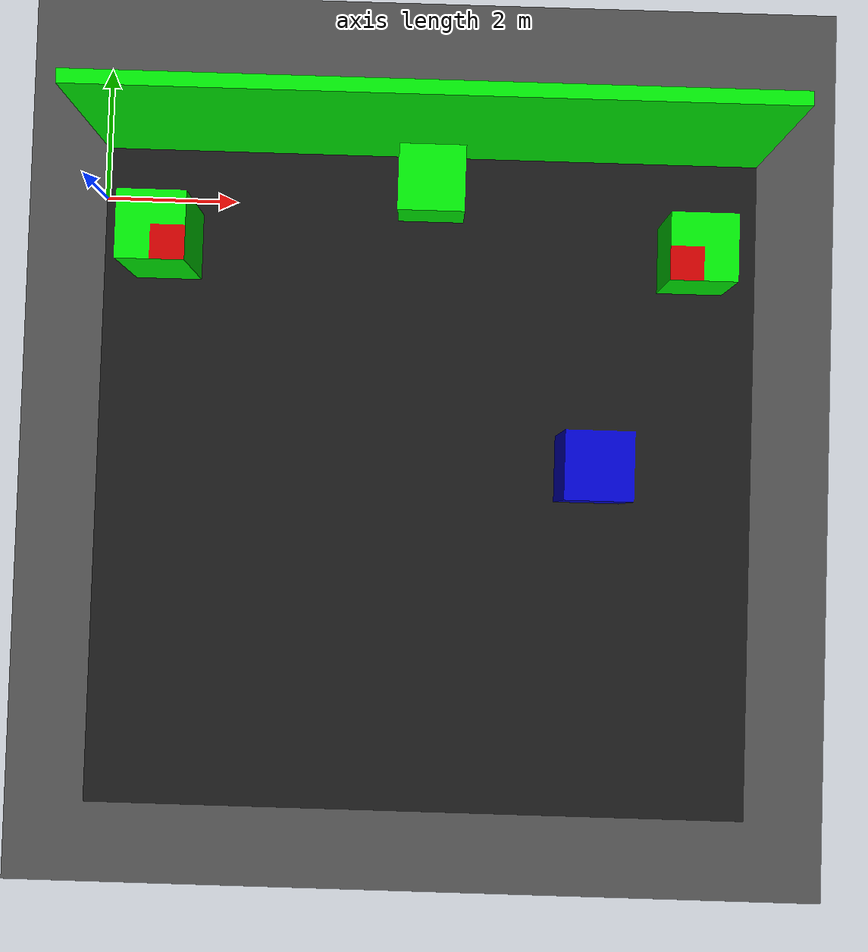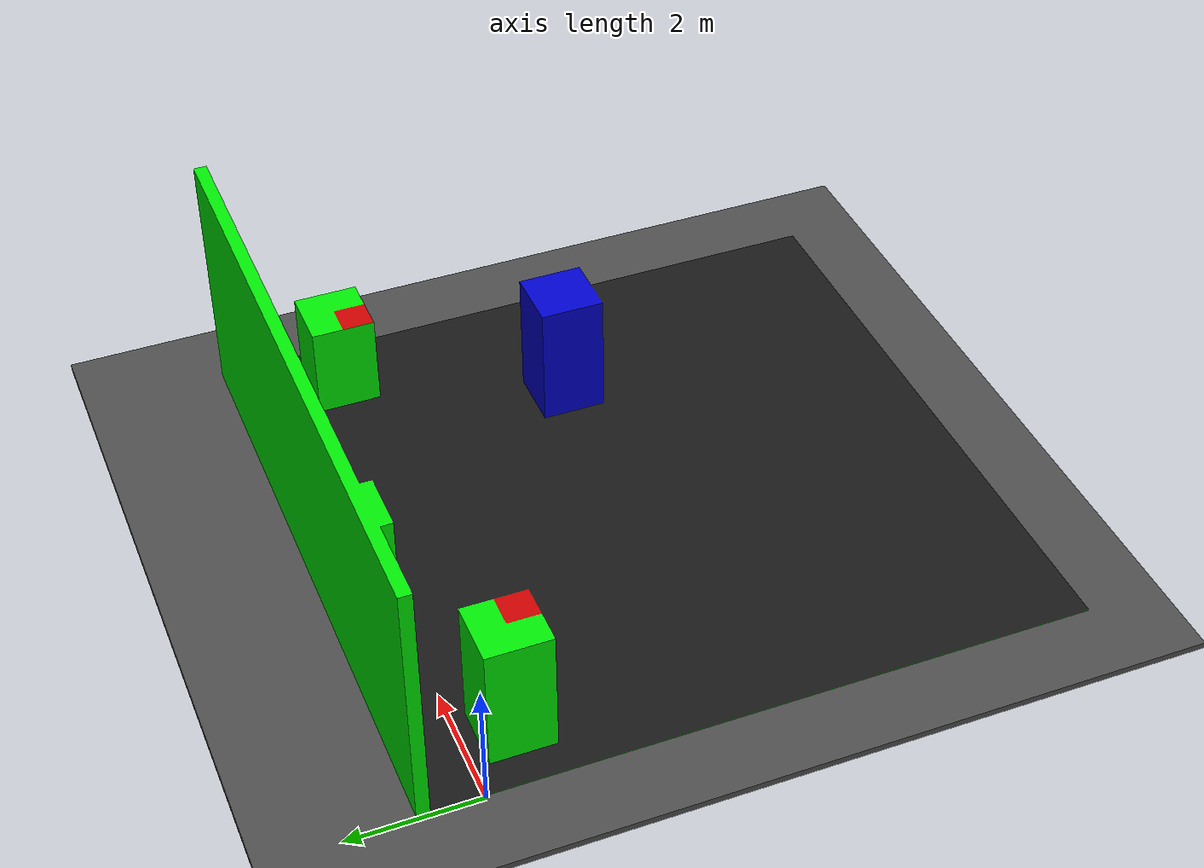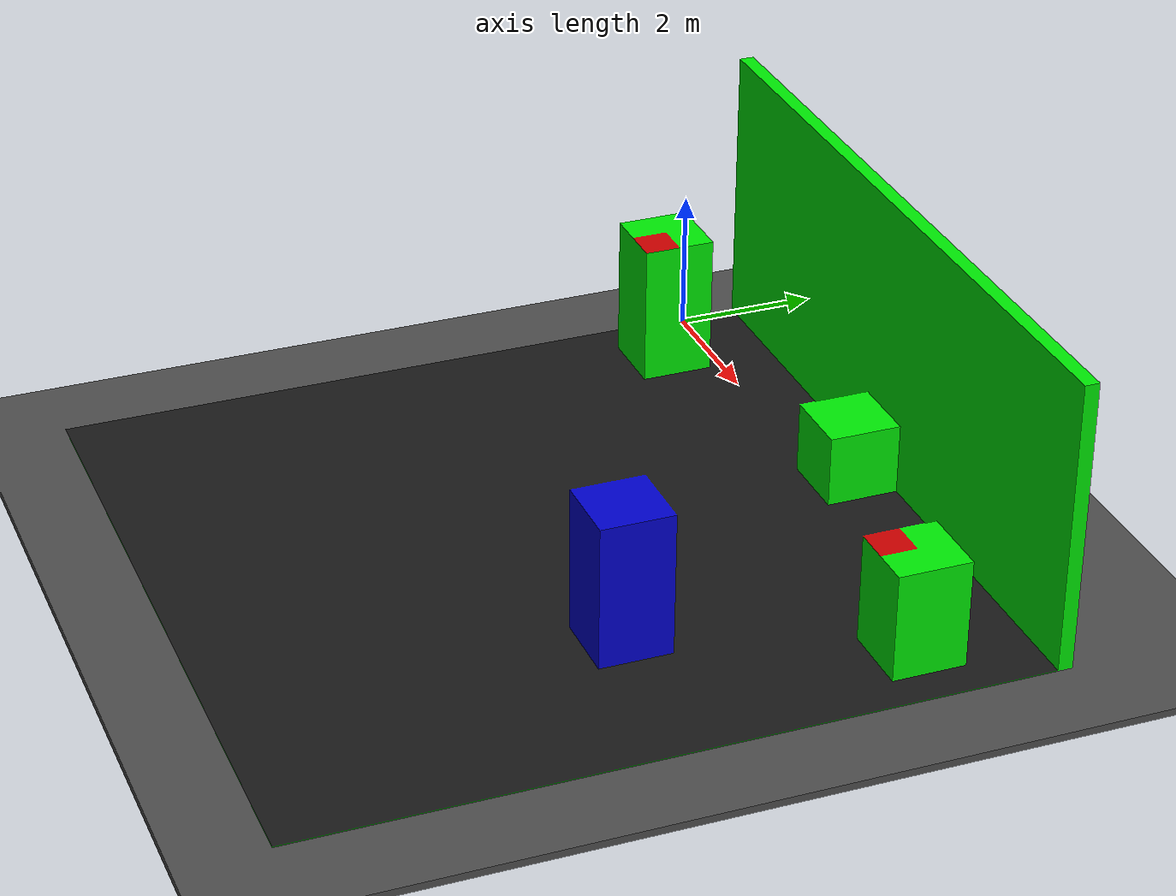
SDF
<sdf version="1.6">
 <world name="default">
  <light name="sun" type="directional">
   <pose>0 0 10 0 -0 0</pose>
   <diffuse>0.8 0.8 0.8 1</diffuse>
   <specular>0.2 0.2 0.2 1</specular>
   <attenuation>
    <range>1000</range>
    <constant>0.9</constant>
    <linear>0.01</linear>
    <quadratic>0.001</quadratic>
   </attenuation>
   <direction>-0.5 0.1 -0.9</direction>
  </light>
  <model name="ground_plane">
   <static>1</static>
   <link name="link">
    <collision name="collision">
     <geometry><plane><normal>0 0 1</normal><size>100 100</size></plane></geometry>
     <surface>
      <contact><collide_bitmask>65535</collide_bitmask></contact>
      <friction><ode><mu>100</mu><mu2>50</mu2></ode></friction>
     </surface>
    </collision>
    <visual name="visual">
     <cast_shadows>0</cast_shadows>
     <geometry><plane><normal>0 0 1</normal><size>100 100</size></plane></geometry>
     <material>
      <script><uri>file://media/materials/scripts/gazebo.material</uri><name>Gazebo/Grey</name></script>
     </material>
    </visual>
   </link>
  </model>
  <model name="asphalt_plane">
   <static>1</static>
   <link name="link">
    <collision name="collision"><geometry><box><size>200 200 0.1</size></box></geometry></collision>
    <visual name="visual">
     <cast_shadows>0</cast_shadows>
     <geometry><box><size>200 200 0.1</size></box></geometry>
     <material>
      <script>
       <uri>model://asphalt_plane/materials/scripts</uri>
       <uri>model://asphalt_plane/materials/textures</uri>
       <name>vrc/asphalt</name>
      </script>
     </material>
    </visual>
   </link>
  </model>
  <model name="Arena_KRTI_2021">
   <pose>0 0.979914 0.06 0 -0 0</pose>
   <static>1</static>
   <link name="link">
    <collision name="collision">
     <geometry><mesh><uri>model://arena/meshes/ArenaKRTI.dae</uri></mesh></geometry>
    </collision>
    <visual name="visual"><geometry><mesh><uri>model://arena/meshes/ArenaKRTI.dae</uri></mesh></geometry></visual>
   </link>
  </model>
  <physics name="default_physics" default="0" type="ode">
   <ode>
    <solver>
     <type>quick</type>
     <iters>10</iters>
     <sor>1.3</sor>
     <use_dynamic_moi_rescaling>0</use_dynamic_moi_rescaling>
    </solver>
    <constraints>
     <cfm>0</cfm>
     <erp>0.2</erp>
     <contact_max_correcting_vel>100</contact_max_correcting_vel>
     <contact_surface_layer>0.001</contact_surface_layer>
    </constraints>
   </ode>
   <max_step_size>0.004</max_step_size>
   <real_time_factor>1</real_time_factor>
   <real_time_update_rate>250</real_time_update_rate>
  </physics>
  <gravity>0 0 -9.8066</gravity>
  <magnetic_field>6e-06 2.3e-05 -4.2e-05</magnetic_field>
  <atmosphere type="adiabatic"/>
  <scene><ambient>0.4 0.4 0.4 1</ambient><background>0.7 0.7 0.7 1</background><shadows>1</shadows></scene>
  <spherical_coordinates>
   <surface_model>EARTH_WGS84</surface_model>
   <latitude_deg>0</latitude_deg>
   <longitude_deg>0</longitude_deg>
   <elevation>0</elevation>
   <heading_deg>0</heading_deg>
  </spherical_coordinates>
 </world>
</sdf>
